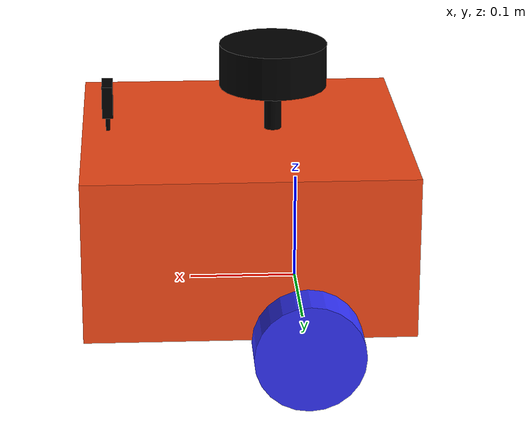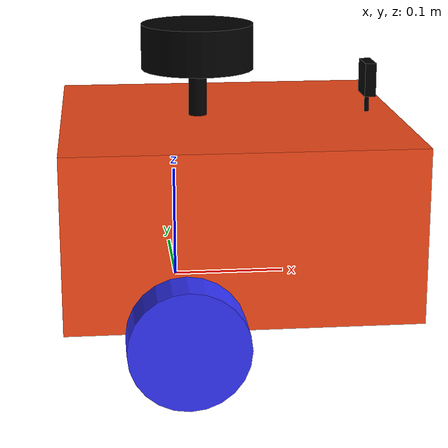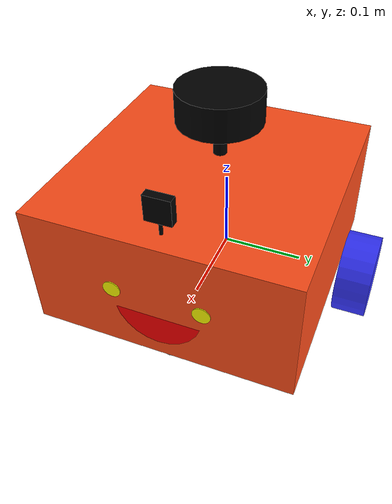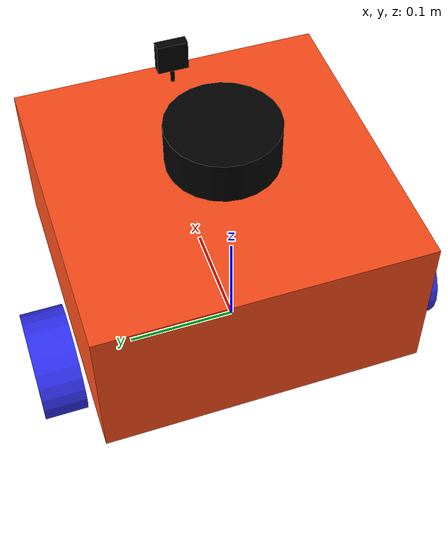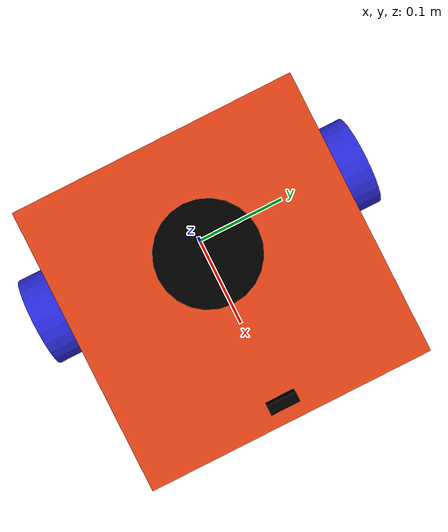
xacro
<?xml version="1.0"?>
<robot xmlns:xacro="http://www.ros.org/wiki/xacro"  name="robot">

    <xacro:arg name="use_ros2_control" default="true"/>
    <xacro:arg name="sim_mode" default="true"/>

    <xacro:include filename="robot_core.xacro" />

    <xacro:if value="$(arg use_ros2_control)">
        <xacro:include filename="ros2_control.xacro" />
    </xacro:if>
    <xacro:unless value="$(arg use_ros2_control)">
        <xacro:include filename="gazebo_control.xacro" />
    </xacro:unless>

    <xacro:include filename="lidar.xacro" />

    <xacro:include filename="camera.xacro" />

    <xacro:include filename="face.xacro" />
</robot>

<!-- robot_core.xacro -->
<robot xmlns:xacro="http://www.ros.org/wiki/xacro" >

    <xacro:include filename="inertial_macros.xacro"/>

    <material name="white">
        <color rgba="1 1 1 1" />
    </material>

    <material name="orange">
        <color rgba="1 0.3 0.1 1"/>
    </material>

    <material name="blue">
        <color rgba="0.2 0.2 1 1"/>
    </material>

    <material name="black">
        <color rgba="0 0 0 1"/>
    </material>

    <material name="red">
        <color rgba="1 0 0 1"/>
    </material>

    <material name="green">
        <color rgba="0 1 0 1"/>
    </material>

    <material name="yellow">
        <color rgba="1 1 0 1"/>
    </material>

    <material name="purple">
        <color rgba="0.5 0 0.5 1"/>
    </material>

    <material name="cyan">
        <color rgba="0 1 1 1"/>
    </material>

    <!-- BASE LINK -->

    <link name="base_link">

    </link>

    <!-- BASE_FOOTPRINT LINK -->

    <joint name="base_footprint_joint" type="fixed">
        <parent link="base_link"/>
        <child link="base_footprint"/>
        <origin xyz="0 0 0" rpy="0 0 0"/>
    </joint>

    <link name="base_footprint">
    </link>

    <!-- CHASSIS LINK -->

    <joint name="chassis_joint" type="fixed">
        <parent link="base_link"/>
        <child link="chassis"/>
        <origin xyz="-0.1 0 0"/>
    </joint>

    <link name="chassis">
        <visual>
            <origin xyz="0.15 0 0.075"/>
            <geometry>
                <box size="0.3 0.3 0.15"/>
            </geometry>
            <material name="orange"/>
        </visual>
        <collision>
            <origin xyz="0.15 0 0.075"/>
            <geometry>
                <box size="0.3 0.3 0.15"/>
            </geometry>
        </collision>
        <xacro:inertial_box mass="0.5" x="0.3" y="0.3" z="0.15">
            <origin xyz="0.15 0 0.075" rpy="0 0 0"/>
        </xacro:inertial_box>
    </link>

    <gazebo reference="chassis">
        <material>Gazebo/Orange</material>
    </gazebo>

    <!-- LEFT WHEEL LINK -->

    <joint name="left_wheel_joint" type="continuous">
        <parent link="base_link"/>
        <child link="left_wheel"/>
        <origin xyz="0 0.175 0" rpy="-${pi/2} 0 0" />
        <axis xyz="0 0 1"/>
    </joint>

    <link name="left_wheel">
        <visual>
            <geometry>
                <cylinder radius="0.05" length="0.04"/>
            </geometry>
            <material name="blue"/>
        </visual>
        <collision>
            <geometry>
                <cylinder radius="0.05" length="0.04"/>
            </geometry>
        </collision>
        <xacro:inertial_cylinder mass="0.1" length="0.04" radius="0.05">
            <origin xyz="0 0 0" rpy="0 0 0"/>
        </xacro:inertial_cylinder>
    </link>

    <gazebo reference="left_wheel">
        <material>Gazebo/Blue</material>
    </gazebo>

    <!-- RIGHT WHEEL LINK -->

    <joint name="right_wheel_joint" type="continuous">
        <parent link="base_link"/>
        <child link="right_wheel"/>
        <origin xyz="0 -0.175 0" rpy="${pi/2} 0 0" />
        <axis xyz="0 0 -1"/>
    </joint>

    <link name="right_wheel">
        <visual>
            <geometry>
                <cylinder radius="0.05" length="0.04"/>
            </geometry>
            <material name="blue"/>
        </visual>
        <collision>
            <geometry>
                <cylinder radius="0.05" length="0.04"/>
            </geometry>
        </collision>
        <xacro:inertial_cylinder mass="0.1" length="0.04" radius="0.05">
            <origin xyz="0 0 0" rpy="0 0 0"/>
        </xacro:inertial_cylinder>
    </link>

    <gazebo reference="right_wheel">
        <material>Gazebo/Blue</material>
    </gazebo>

    <!-- CASTER WHEEL LINK -->

    <joint name="caster_wheel_joint" type="fixed">
        <parent link="chassis"/>
        <child link="caster_wheel"/>
        <origin xyz="0.24 0 0"/>
    </joint>

    <link name="caster_wheel">
        <visual>
            <geometry>
                <sphere radius="0.05"/>
            </geometry>
            <material name="black"/>
        </visual>
        <collision>
            <geometry>
                <sphere radius="0.05"/>
            </geometry>
        </collision>
        <xacro:inertial_sphere mass="0.1" radius="0.05">
            <origin xyz="0 0 0" rpy="0 0 0"/>
        </xacro:inertial_sphere>
    </link>

    <gazebo reference="caster_wheel">
        <material>Gazebo/Black</material>
        <mu1 value="0.001"/>
        <mu2 value="0.001"/>
    </gazebo>

</robot>

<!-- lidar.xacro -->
<robot xmlns:xacro="http://www.ros.org/wiki/xacro" >

    <joint name="laser_joint" type="fixed">
        <parent link="chassis"/>
        <child link="laser_frame"/>
        <origin xyz="0.122 0 0.212" rpy="0 0 0"/>
    </joint>

    <link name="laser_frame">
        <visual>
            <geometry>
                <cylinder radius="0.05" length="0.04"/>
            </geometry>
            <material name="black"/>
        </visual>
        <visual>
            <origin xyz="0 0 -0.05"/>
            <geometry>
                <cylinder radius="0.008" length="0.1"/>
            </geometry>
            <material name="black"/>
        </visual>
        <collision>
            <geometry>
                <cylinder radius="0.05" length="0.04"/>
            </geometry>
        </collision>
        <xacro:inertial_cylinder mass="0.1" length="0.04" radius="0.05">
            <origin xyz="0 0 0" rpy="0 0 0"/>
        </xacro:inertial_cylinder>
    </link>

    <gazebo reference="laser_frame">
        <material>Gazebo/Black</material>

        <sensor name="laser" type="ray">
            <pose> 0 0 0 0 0 0 </pose>
            <visualize>false</visualize>
            <update_rate>10</update_rate>
            <ray>
                <scan>
                    <horizontal>
                        <samples>360</samples>
                        <min_angle>-3.14</min_angle>
                        <max_angle>3.14</max_angle>
                    </horizontal>
                </scan>
                <range>
                    <min>0.3</min>
                    <max>12</max>
                </range>
            </ray>
            <plugin name="laser_controller" filename="libgazebo_ros_ray_sensor.so">
                <ros>
                    <argument>~/out:=scan</argument>
                </ros>
                <output_type>sensor_msgs/LaserScan</output_type>
                <frame_name>laser_frame</frame_name>
            </plugin>
        </sensor>
    </gazebo>

</robot>

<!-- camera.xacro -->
<robot xmlns:xacro="http://www.ros.org/wiki/xacro" >

    <joint name="camera_joint" type="fixed">
        <parent link="chassis"/>
        <child link="camera_link"/>
        <origin xyz="0.276 0 0.181" rpy="0 0 0"/>
    </joint>

    <link name="camera_link">
        <visual>
            <geometry>
                <box size="0.010 0.03 0.03"/>
            </geometry>
            <material name="black"/>
        </visual>
        <visual>
            <origin xyz="0 0 -0.05"/>
            <geometry>
                <cylinder radius="0.002" length="0.08"/>
            </geometry>
            <material name="black"/>
        </visual>
    </link>

    <joint name="camera_optical_joint" type="fixed">
        <parent link="camera_link"/>
        <child link="camera_link_optical"/>
        <origin xyz="0 0 0" rpy="${-pi/2} 0 ${-pi/2}"/>
    </joint>

    <link name="camera_link_optical"></link>

    <gazebo reference="camera_link">
        <material>Gazebo/Black</material>

        <sensor name="camera" type="camera">
            <pose> 0 0 0 0 0 0 </pose>
            <visualize>true</visualize>
            <update_rate>10</update_rate>
            <camera>
                <horizontal_fov>1.089</horizontal_fov>
                <image>
                    <format>R8G8B8</format>
                    <width>640</width>
                    <height>480</height>
                </image>
                <clip>
                    <near>0.05</near>
                    <far>8.0</far>
                </clip>
            </camera>
            <plugin name="camera_controller" filename="libgazebo_ros_camera.so">
                <frame_name>camera_link_optical</frame_name>
            </plugin>
        </sensor>
    </gazebo>

</robot>

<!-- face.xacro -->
<robot xmlns:xacro="http://www.ros.org/wiki/xacro" >

    <joint name="face_joint" type="fixed">
        <parent link="chassis"/>
        <child link="face_link"/>
        <origin xyz="0.29999 0 0.069" rpy="0 0 0"/>
    </joint>

    <link name="face_link">
        <visual>
            <origin xyz="0 0.05 0.01" rpy="0 ${pi/2} 0"/>
            <geometry>
                <cylinder radius="0.01" length="0.002"/>
            </geometry>
            <material name="yellow"/>
        </visual>

        <visual>
            <origin xyz="0 -0.05 0.01" rpy="0 ${pi/2} 0"/>
            <geometry>
                <cylinder radius="0.01" length="0.002"/>
            </geometry>
            <material name="yellow"/>
        </visual>

        <visual>
            <origin xyz="-0.011 0 -0.00" rpy="0 ${1.5} 0"/>
            <geometry>
                <cylinder radius="0.05" length="0.02"/>
            </geometry>
            <material name="red"/>
        </visual>
    </link>

    <gazebo reference="face_link">
        <material>Gazebo/Yellow</material>
    </gazebo>

</robot>
